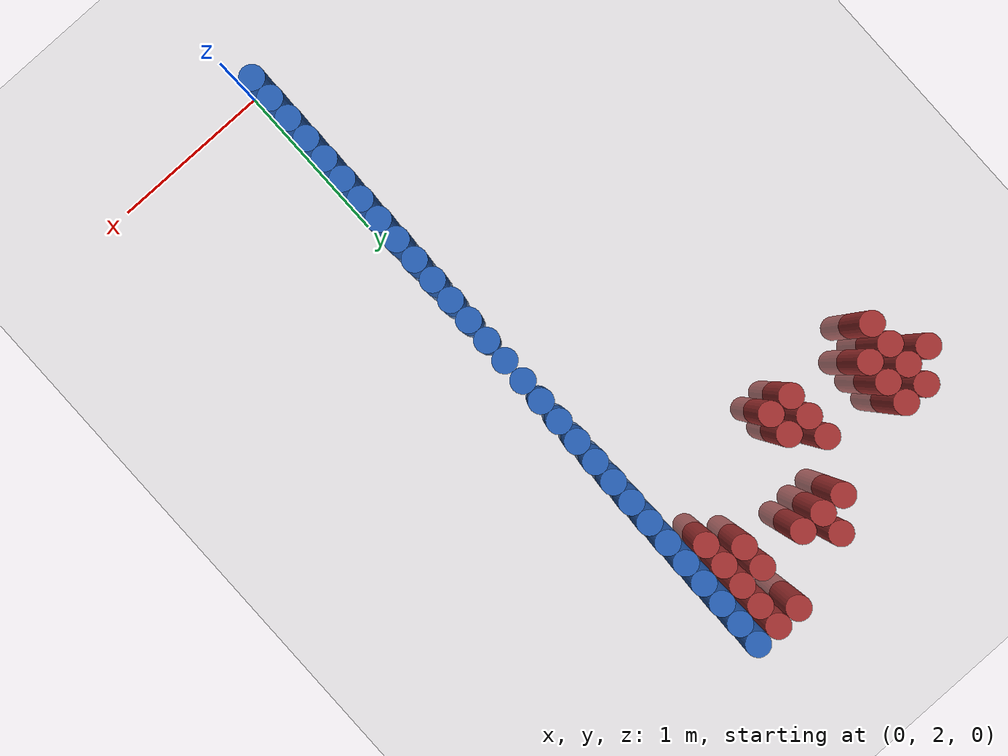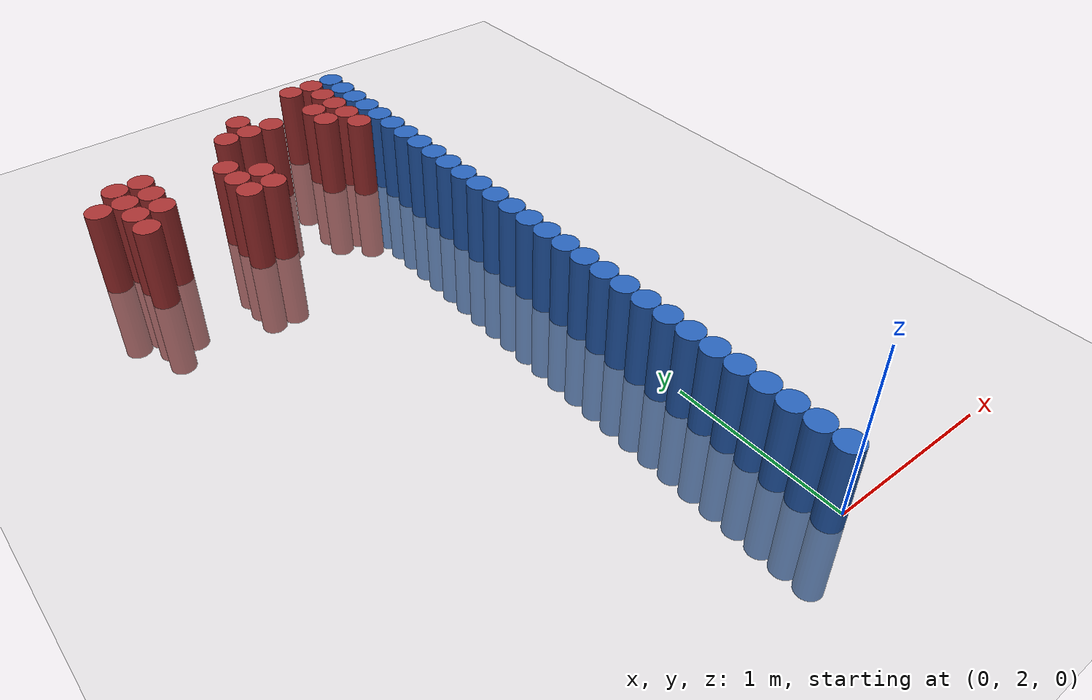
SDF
<sdf version="1.6">
 <world name="default">
  <model name="ground_plane">
   <static>1</static>
   <link name="link">
    <collision name="collision">
     <geometry><plane><normal>0 0 1</normal><size>100 100</size></plane></geometry>
     <surface><friction><ode><mu>100</mu><mu2>50</mu2></ode></friction></surface>
    </collision>
    <visual name="visual">
     <cast_shadows>0</cast_shadows>
     <geometry><plane><normal>0 0 1</normal><size>100 100</size></plane></geometry>
     <material>
      <script><uri>file://media/materials/scripts/gazebo.material</uri><name>Gazebo/Grey</name></script>
     </material>
    </visual>
   </link>
  </model>
  <model name="unit_cylinder_54">
   <static>1</static>
   <pose>-0.075000 2.025000 0.000000 0.000000 0.000000 0.000000</pose>
   <link name="link">
    <inertial>
     <mass>1</mass>
     <inertia><ixx>0.145833</ixx><ixy>0</ixy><ixz>0</ixz><iyy>0.145833</iyy><iyz>0</iyz><izz>0.125</izz></inertia>
    </inertial>
    <collision name="collision">
     <geometry><cylinder><radius>0.075000</radius><length>1</length></cylinder></geometry>
    </collision>
    <visual name="visual">
     <geometry><cylinder><radius>0.075000</radius><length>1</length></cylinder></geometry>
     <material>
      <ambient>0.152000 0.379000 0.720000 1</ambient>
      <diffuse>0.152000 0.379000 0.720000 1</diffuse>
     </material>
     <material>
      <script><name>Gazebo/Grey</name><uri>file://media/materials/scripts/gazebo.material</uri></script>
     </material>
    </visual>
   </link>
  </model>
  <model name="unit_cylinder_56">
   <static>1</static>
   <pose>-0.075000 2.175000 0.000000 0.000000 0.000000 0.000000</pose>
   <link name="link">
    <inertial>
     <mass>1</mass>
     <inertia><ixx>0.145833</ixx><ixy>0</ixy><ixz>0</ixz><iyy>0.145833</iyy><iyz>0</iyz><izz>0.125</izz></inertia>
    </inertial>
    <collision name="collision">
     <geometry><cylinder><radius>0.075000</radius><length>1</length></cylinder></geometry>
    </collision>
    <visual name="visual">
     <geometry><cylinder><radius>0.075000</radius><length>1</length></cylinder></geometry>
     <material>
      <ambient>0.152000 0.379000 0.720000 1</ambient>
      <diffuse>0.152000 0.379000 0.720000 1</diffuse>
     </material>
     <material>
      <script><name>Gazebo/Grey</name><uri>file://media/materials/scripts/gazebo.material</uri></script>
     </material>
    </visual>
   </link>
  </model>
  <model name="unit_cylinder_58">
   <static>1</static>
   <pose>-0.075000 2.325000 0.000000 0.000000 0.000000 0.000000</pose>
   <link name="link">
    <inertial>
     <mass>1</mass>
     <inertia><ixx>0.145833</ixx><ixy>0</ixy><ixz>0</ixz><iyy>0.145833</iyy><iyz>0</iyz><izz>0.125</izz></inertia>
    </inertial>
    <collision name="collision">
     <geometry><cylinder><radius>0.075000</radius><length>1</length></cylinder></geometry>
    </collision>
    <visual name="visual">
     <geometry><cylinder><radius>0.075000</radius><length>1</length></cylinder></geometry>
     <material>
      <ambient>0.152000 0.379000 0.720000 1</ambient>
      <diffuse>0.152000 0.379000 0.720000 1</diffuse>
     </material>
     <material>
      <script><name>Gazebo/Grey</name><uri>file://media/materials/scripts/gazebo.material</uri></script>
     </material>
    </visual>
   </link>
  </model>
  <model name="unit_cylinder_60">
   <static>1</static>
   <pose>-0.075000 2.475000 0.000000 0.000000 0.000000 0.000000</pose>
   <link name="link">
    <inertial>
     <mass>1</mass>
     <inertia><ixx>0.145833</ixx><ixy>0</ixy><ixz>0</ixz><iyy>0.145833</iyy><iyz>0</iyz><izz>0.125</izz></inertia>
    </inertial>
    <collision name="collision">
     <geometry><cylinder><radius>0.075000</radius><length>1</length></cylinder></geometry>
    </collision>
    <visual name="visual">
     <geometry><cylinder><radius>0.075000</radius><length>1</length></cylinder></geometry>
     <material>
      <ambient>0.152000 0.379000 0.720000 1</ambient>
      <diffuse>0.152000 0.379000 0.720000 1</diffuse>
     </material>
     <material>
      <script><name>Gazebo/Grey</name><uri>file://media/materials/scripts/gazebo.material</uri></script>
     </material>
    </visual>
   </link>
  </model>
  <model name="unit_cylinder_62">
   <static>1</static>
   <pose>-0.075000 2.625000 0.000000 0.000000 0.000000 0.000000</pose>
   <link name="link">
    <inertial>
     <mass>1</mass>
     <inertia><ixx>0.145833</ixx><ixy>0</ixy><ixz>0</ixz><iyy>0.145833</iyy><iyz>0</iyz><izz>0.125</izz></inertia>
    </inertial>
    <collision name="collision">
     <geometry><cylinder><radius>0.075000</radius><length>1</length></cylinder></geometry>
    </collision>
    <visual name="visual">
     <geometry><cylinder><radius>0.075000</radius><length>1</length></cylinder></geometry>
     <material>
      <ambient>0.152000 0.379000 0.720000 1</ambient>
      <diffuse>0.152000 0.379000 0.720000 1</diffuse>
     </material>
     <material>
      <script><name>Gazebo/Grey</name><uri>file://media/materials/scripts/gazebo.material</uri></script>
     </material>
    </visual>
   </link>
  </model>
  <model name="unit_cylinder_64">
   <static>1</static>
   <pose>-0.075000 2.775000 0.000000 0.000000 0.000000 0.000000</pose>
   <link name="link">
    <inertial>
     <mass>1</mass>
     <inertia><ixx>0.145833</ixx><ixy>0</ixy><ixz>0</ixz><iyy>0.145833</iyy><iyz>0</iyz><izz>0.125</izz></inertia>
    </inertial>
    <collision name="collision">
     <geometry><cylinder><radius>0.075000</radius><length>1</length></cylinder></geometry>
    </collision>
    <visual name="visual">
     <geometry><cylinder><radius>0.075000</radius><length>1</length></cylinder></geometry>
     <material>
      <ambient>0.152000 0.379000 0.720000 1</ambient>
      <diffuse>0.152000 0.379000 0.720000 1</diffuse>
     </material>
     <material>
      <script><name>Gazebo/Grey</name><uri>file://media/materials/scripts/gazebo.material</uri></script>
     </material>
    </visual>
   </link>
  </model>
  <model name="unit_cylinder_66">
   <static>1</static>
   <pose>-0.075000 2.925000 0.000000 0.000000 0.000000 0.000000</pose>
   <link name="link">
    <inertial>
     <mass>1</mass>
     <inertia><ixx>0.145833</ixx><ixy>0</ixy><ixz>0</ixz><iyy>0.145833</iyy><iyz>0</iyz><izz>0.125</izz></inertia>
    </inertial>
    <collision name="collision">
     <geometry><cylinder><radius>0.075000</radius><length>1</length></cylinder></geometry>
    </collision>
    <visual name="visual">
     <geometry><cylinder><radius>0.075000</radius><length>1</length></cylinder></geometry>
     <material>
      <ambient>0.152000 0.379000 0.720000 1</ambient>
      <diffuse>0.152000 0.379000 0.720000 1</diffuse>
     </material>
     <material>
      <script><name>Gazebo/Grey</name><uri>file://media/materials/scripts/gazebo.material</uri></script>
     </material>
    </visual>
   </link>
  </model>
  <model name="unit_cylinder_68">
   <static>1</static>
   <pose>-0.075000 3.075000 0.000000 0.000000 0.000000 0.000000</pose>
   <link name="link">
    <inertial>
     <mass>1</mass>
     <inertia><ixx>0.145833</ixx><ixy>0</ixy><ixz>0</ixz><iyy>0.145833</iyy><iyz>0</iyz><izz>0.125</izz></inertia>
    </inertial>
    <collision name="collision">
     <geometry><cylinder><radius>0.075000</radius><length>1</length></cylinder></geometry>
    </collision>
    <visual name="visual">
     <geometry><cylinder><radius>0.075000</radius><length>1</length></cylinder></geometry>
     <material>
      <ambient>0.152000 0.379000 0.720000 1</ambient>
      <diffuse>0.152000 0.379000 0.720000 1</diffuse>
     </material>
     <material>
      <script><name>Gazebo/Grey</name><uri>file://media/materials/scripts/gazebo.material</uri></script>
     </material>
    </visual>
   </link>
  </model>
  <model name="unit_cylinder_70">
   <static>1</static>
   <pose>-0.075000 3.225000 0.000000 0.000000 0.000000 0.000000</pose>
   <link name="link">
    <inertial>
     <mass>1</mass>
     <inertia><ixx>0.145833</ixx><ixy>0</ixy><ixz>0</ixz><iyy>0.145833</iyy><iyz>0</iyz><izz>0.125</izz></inertia>
    </inertial>
    <collision name="collision">
     <geometry><cylinder><radius>0.075000</radius><length>1</length></cylinder></geometry>
    </collision>
    <visual name="visual">
     <geometry><cylinder><radius>0.075000</radius><length>1</length></cylinder></geometry>
     <material>
      <ambient>0.152000 0.379000 0.720000 1</ambient>
      <diffuse>0.152000 0.379000 0.720000 1</diffuse>
     </material>
     <material>
      <script><name>Gazebo/Grey</name><uri>file://media/materials/scripts/gazebo.material</uri></script>
     </material>
    </visual>
   </link>
  </model>
  <model name="unit_cylinder_72">
   <static>1</static>
   <pose>-0.075000 3.375000 0.000000 0.000000 0.000000 0.000000</pose>
   <link name="link">
    <inertial>
     <mass>1</mass>
     <inertia><ixx>0.145833</ixx><ixy>0</ixy><ixz>0</ixz><iyy>0.145833</iyy><iyz>0</iyz><izz>0.125</izz></inertia>
    </inertial>
    <collision name="collision">
     <geometry><cylinder><radius>0.075000</radius><length>1</length></cylinder></geometry>
    </collision>
    <visual name="visual">
     <geometry><cylinder><radius>0.075000</radius><length>1</length></cylinder></geometry>
     <material>
      <ambient>0.152000 0.379000 0.720000 1</ambient>
      <diffuse>0.152000 0.379000 0.720000 1</diffuse>
     </material>
     <material>
      <script><name>Gazebo/Grey</name><uri>file://media/materials/scripts/gazebo.material</uri></script>
     </material>
    </visual>
   </link>
  </model>
  <model name="unit_cylinder_74">
   <static>1</static>
   <pose>-0.075000 3.525000 0.000000 0.000000 0.000000 0.000000</pose>
   <link name="link">
    <inertial>
     <mass>1</mass>
     <inertia><ixx>0.145833</ixx><ixy>0</ixy><ixz>0</ixz><iyy>0.145833</iyy><iyz>0</iyz><izz>0.125</izz></inertia>
    </inertial>
    <collision name="collision">
     <geometry><cylinder><radius>0.075000</radius><length>1</length></cylinder></geometry>
    </collision>
    <visual name="visual">
     <geometry><cylinder><radius>0.075000</radius><length>1</length></cylinder></geometry>
     <material>
      <ambient>0.152000 0.379000 0.720000 1</ambient>
      <diffuse>0.152000 0.379000 0.720000 1</diffuse>
     </material>
     <material>
      <script><name>Gazebo/Grey</name><uri>file://media/materials/scripts/gazebo.material</uri></script>
     </material>
    </visual>
   </link>
  </model>
  <model name="unit_cylinder_76">
   <static>1</static>
   <pose>-0.075000 3.675000 0.000000 0.000000 0.000000 0.000000</pose>
   <link name="link">
    <inertial>
     <mass>1</mass>
     <inertia><ixx>0.145833</ixx><ixy>0</ixy><ixz>0</ixz><iyy>0.145833</iyy><iyz>0</iyz><izz>0.125</izz></inertia>
    </inertial>
    <collision name="collision">
     <geometry><cylinder><radius>0.075000</radius><length>1</length></cylinder></geometry>
    </collision>
    <visual name="visual">
     <geometry><cylinder><radius>0.075000</radius><length>1</length></cylinder></geometry>
     <material>
      <ambient>0.152000 0.379000 0.720000 1</ambient>
      <diffuse>0.152000 0.379000 0.720000 1</diffuse>
     </material>
     <material>
      <script><name>Gazebo/Grey</name><uri>file://media/materials/scripts/gazebo.material</uri></script>
     </material>
    </visual>
   </link>
  </model>
  <model name="unit_cylinder_78">
   <static>1</static>
   <pose>-0.075000 3.825000 0.000000 0.000000 0.000000 0.000000</pose>
   <link name="link">
    <inertial>
     <mass>1</mass>
     <inertia><ixx>0.145833</ixx><ixy>0</ixy><ixz>0</ixz><iyy>0.145833</iyy><iyz>0</iyz><izz>0.125</izz></inertia>
    </inertial>
    <collision name="collision">
     <geometry><cylinder><radius>0.075000</radius><length>1</length></cylinder></geometry>
    </collision>
    <visual name="visual">
     <geometry><cylinder><radius>0.075000</radius><length>1</length></cylinder></geometry>
     <material>
      <ambient>0.152000 0.379000 0.720000 1</ambient>
      <diffuse>0.152000 0.379000 0.720000 1</diffuse>
     </material>
     <material>
      <script><name>Gazebo/Grey</name><uri>file://media/materials/scripts/gazebo.material</uri></script>
     </material>
    </visual>
   </link>
  </model>
  <model name="unit_cylinder_80">
   <static>1</static>
   <pose>-0.075000 3.975000 0.000000 0.000000 0.000000 0.000000</pose>
   <link name="link">
    <inertial>
     <mass>1</mass>
     <inertia><ixx>0.145833</ixx><ixy>0</ixy><ixz>0</ixz><iyy>0.145833</iyy><iyz>0</iyz><izz>0.125</izz></inertia>
    </inertial>
    <collision name="collision">
     <geometry><cylinder><radius>0.075000</radius><length>1</length></cylinder></geometry>
    </collision>
    <visual name="visual">
     <geometry><cylinder><radius>0.075000</radius><length>1</length></cylinder></geometry>
     <material>
      <ambient>0.152000 0.379000 0.720000 1</ambient>
      <diffuse>0.152000 0.379000 0.720000 1</diffuse>
     </material>
     <material>
      <script><name>Gazebo/Grey</name><uri>file://media/materials/scripts/gazebo.material</uri></script>
     </material>
    </visual>
   </link>
  </model>
  <model name="unit_cylinder_82">
   <static>1</static>
   <pose>-0.075000 4.125000 0.000000 0.000000 0.000000 0.000000</pose>
   <link name="link">
    <inertial>
     <mass>1</mass>
     <inertia><ixx>0.145833</ixx><ixy>0</ixy><ixz>0</ixz><iyy>0.145833</iyy><iyz>0</iyz><izz>0.125</izz></inertia>
    </inertial>
    <collision name="collision">
     <geometry><cylinder><radius>0.075000</radius><length>1</length></cylinder></geometry>
    </collision>
    <visual name="visual">
     <geometry><cylinder><radius>0.075000</radius><length>1</length></cylinder></geometry>
     <material>
      <ambient>0.152000 0.379000 0.720000 1</ambient>
      <diffuse>0.152000 0.379000 0.720000 1</diffuse>
     </material>
     <material>
      <script><name>Gazebo/Grey</name><uri>file://media/materials/scripts/gazebo.material</uri></script>
     </material>
    </visual>
   </link>
  </model>
  <model name="unit_cylinder_84">
   <static>1</static>
   <pose>-0.075000 4.275000 0.000000 0.000000 0.000000 0.000000</pose>
   <link name="link">
    <inertial>
     <mass>1</mass>
     <inertia><ixx>0.145833</ixx><ixy>0</ixy><ixz>0</ixz><iyy>0.145833</iyy><iyz>0</iyz><izz>0.125</izz></inertia>
    </inertial>
    <collision name="collision">
     <geometry><cylinder><radius>0.075000</radius><length>1</length></cylinder></geometry>
    </collision>
    <visual name="visual">
     <geometry><cylinder><radius>0.075000</radius><length>1</length></cylinder></geometry>
     <material>
      <ambient>0.152000 0.379000 0.720000 1</ambient>
      <diffuse>0.152000 0.379000 0.720000 1</diffuse>
     </material>
     <material>
      <script><name>Gazebo/Grey</name><uri>file://media/materials/scripts/gazebo.material</uri></script>
     </material>
    </visual>
   </link>
  </model>
  <model name="unit_cylinder_86">
   <static>1</static>
   <pose>-0.075000 4.425000 0.000000 0.000000 0.000000 0.000000</pose>
   <link name="link">
    <inertial>
     <mass>1</mass>
     <inertia><ixx>0.145833</ixx><ixy>0</ixy><ixz>0</ixz><iyy>0.145833</iyy><iyz>0</iyz><izz>0.125</izz></inertia>
    </inertial>
    <collision name="collision">
     <geometry><cylinder><radius>0.075000</radius><length>1</length></cylinder></geometry>
    </collision>
    <visual name="visual">
     <geometry><cylinder><radius>0.075000</radius><length>1</length></cylinder></geometry>
     <material>
      <ambient>0.152000 0.379000 0.720000 1</ambient>
      <diffuse>0.152000 0.379000 0.720000 1</diffuse>
     </material>
     <material>
      <script><name>Gazebo/Grey</name><uri>file://media/materials/scripts/gazebo.material</uri></script>
     </material>
    </visual>
   </link>
  </model>
  <model name="unit_cylinder_88">
   <static>1</static>
   <pose>-0.075000 4.575000 0.000000 0.000000 0.000000 0.000000</pose>
   <link name="link">
    <inertial>
     <mass>1</mass>
     <inertia><ixx>0.145833</ixx><ixy>0</ixy><ixz>0</ixz><iyy>0.145833</iyy><iyz>0</iyz><izz>0.125</izz></inertia>
    </inertial>
    <collision name="collision">
     <geometry><cylinder><radius>0.075000</radius><length>1</length></cylinder></geometry>
    </collision>
    <visual name="visual">
     <geometry><cylinder><radius>0.075000</radius><length>1</length></cylinder></geometry>
     <material>
      <ambient>0.152000 0.379000 0.720000 1</ambient>
      <diffuse>0.152000 0.379000 0.720000 1</diffuse>
     </material>
     <material>
      <script><name>Gazebo/Grey</name><uri>file://media/materials/scripts/gazebo.material</uri></script>
     </material>
    </visual>
   </link>
  </model>
  <model name="unit_cylinder_90">
   <static>1</static>
   <pose>-0.075000 4.725000 0.000000 0.000000 0.000000 0.000000</pose>
   <link name="link">
    <inertial>
     <mass>1</mass>
     <inertia><ixx>0.145833</ixx><ixy>0</ixy><ixz>0</ixz><iyy>0.145833</iyy><iyz>0</iyz><izz>0.125</izz></inertia>
    </inertial>
    <collision name="collision">
     <geometry><cylinder><radius>0.075000</radius><length>1</length></cylinder></geometry>
    </collision>
    <visual name="visual">
     <geometry><cylinder><radius>0.075000</radius><length>1</length></cylinder></geometry>
     <material>
      <ambient>0.152000 0.379000 0.720000 1</ambient>
      <diffuse>0.152000 0.379000 0.720000 1</diffuse>
     </material>
     <material>
      <script><name>Gazebo/Grey</name><uri>file://media/materials/scripts/gazebo.material</uri></script>
     </material>
    </visual>
   </link>
  </model>
  <model name="unit_cylinder_92">
   <static>1</static>
   <pose>-0.075000 4.875000 0.000000 0.000000 0.000000 0.000000</pose>
   <link name="link">
    <inertial>
     <mass>1</mass>
     <inertia><ixx>0.145833</ixx><ixy>0</ixy><ixz>0</ixz><iyy>0.145833</iyy><iyz>0</iyz><izz>0.125</izz></inertia>
    </inertial>
    <collision name="collision">
     <geometry><cylinder><radius>0.075000</radius><length>1</length></cylinder></geometry>
    </collision>
    <visual name="visual">
     <geometry><cylinder><radius>0.075000</radius><length>1</length></cylinder></geometry>
     <material>
      <ambient>0.152000 0.379000 0.720000 1</ambient>
      <diffuse>0.152000 0.379000 0.720000 1</diffuse>
     </material>
     <material>
      <script><name>Gazebo/Grey</name><uri>file://media/materials/scripts/gazebo.material</uri></script>
     </material>
    </visual>
   </link>
  </model>
  <model name="unit_cylinder_94">
   <static>1</static>
   <pose>-0.075000 5.025000 0.000000 0.000000 0.000000 0.000000</pose>
   <link name="link">
    <inertial>
     <mass>1</mass>
     <inertia><ixx>0.145833</ixx><ixy>0</ixy><ixz>0</ixz><iyy>0.145833</iyy><iyz>0</iyz><izz>0.125</izz></inertia>
    </inertial>
    <collision name="collision">
     <geometry><cylinder><radius>0.075000</radius><length>1</length></cylinder></geometry>
    </collision>
    <visual name="visual">
     <geometry><cylinder><radius>0.075000</radius><length>1</length></cylinder></geometry>
     <material>
      <ambient>0.152000 0.379000 0.720000 1</ambient>
      <diffuse>0.152000 0.379000 0.720000 1</diffuse>
     </material>
     <material>
      <script><name>Gazebo/Grey</name><uri>file://media/materials/scripts/gazebo.material</uri></script>
     </material>
    </visual>
   </link>
  </model>
  <model name="unit_cylinder_193">
   <static>1</static>
   <pose>-1.875000 5.625000 0.000000 0.000000 0.000000 0.000000</pose>
   <link name="link">
    <inertial>
     <mass>1</mass>
     <inertia><ixx>0.145833</ixx><ixy>0</ixy><ixz>0</ixz><iyy>0.145833</iyy><iyz>0</iyz><izz>0.125</izz></inertia>
    </inertial>
    <collision name="collision">
     <geometry><cylinder><radius>0.075000</radius><length>1</length></cylinder></geometry>
    </collision>
    <visual name="visual">
     <geometry><cylinder><radius>0.075000</radius><length>1</length></cylinder></geometry>
     <material>
      <ambient>0.648000 0.192000 0.192000 1</ambient>
      <diffuse>0.648000 0.192000 0.192000 1</diffuse>
     </material>
     <material>
      <script><name>Gazebo/Grey</name><uri>file://media/materials/scripts/gazebo.material</uri></script>
     </material>
    </visual>
   </link>
  </model>
  <model name="unit_cylinder_200">
   <static>1</static>
   <pose>-1.725000 5.325000 0.000000 0.000000 0.000000 0.000000</pose>
   <link name="link">
    <inertial>
     <mass>1</mass>
     <inertia><ixx>0.145833</ixx><ixy>0</ixy><ixz>0</ixz><iyy>0.145833</iyy><iyz>0</iyz><izz>0.125</izz></inertia>
    </inertial>
    <collision name="collision">
     <geometry><cylinder><radius>0.075000</radius><length>1</length></cylinder></geometry>
    </collision>
    <visual name="visual">
     <geometry><cylinder><radius>0.075000</radius><length>1</length></cylinder></geometry>
     <material>
      <ambient>0.648000 0.192000 0.192000 1</ambient>
      <diffuse>0.648000 0.192000 0.192000 1</diffuse>
     </material>
     <material>
      <script><name>Gazebo/Grey</name><uri>file://media/materials/scripts/gazebo.material</uri></script>
     </material>
    </visual>
   </link>
  </model>
  <model name="unit_cylinder_201">
   <static>1</static>
   <pose>-1.725000 5.475000 0.000000 0.000000 0.000000 0.000000</pose>
   <link name="link">
    <inertial>
     <mass>1</mass>
     <inertia><ixx>0.145833</ixx><ixy>0</ixy><ixz>0</ixz><iyy>0.145833</iyy><iyz>0</iyz><izz>0.125</izz></inertia>
    </inertial>
    <collision name="collision">
     <geometry><cylinder><radius>0.075000</radius><length>1</length></cylinder></geometry>
    </collision>
    <visual name="visual">
     <geometry><cylinder><radius>0.075000</radius><length>1</length></cylinder></geometry>
     <material>
      <ambient>0.648000 0.192000 0.192000 1</ambient>
      <diffuse>0.648000 0.192000 0.192000 1</diffuse>
     </material>
     <material>
      <script><name>Gazebo/Grey</name><uri>file://media/materials/scripts/gazebo.material</uri></script>
     </material>
    </visual>
   </link>
  </model>
  <model name="unit_cylinder_202">
   <static>1</static>
   <pose>-1.725000 5.625000 0.000000 0.000000 0.000000 0.000000</pose>
   <link name="link">
    <inertial>
     <mass>1</mass>
     <inertia><ixx>0.145833</ixx><ixy>0</ixy><ixz>0</ixz><iyy>0.145833</iyy><iyz>0</iyz><izz>0.125</izz></inertia>
    </inertial>
    <collision name="collision">
     <geometry><cylinder><radius>0.075000</radius><length>1</length></cylinder></geometry>
    </collision>
    <visual name="visual">
     <geometry><cylinder><radius>0.075000</radius><length>1</length></cylinder></geometry>
     <material>
      <ambient>0.648000 0.192000 0.192000 1</ambient>
      <diffuse>0.648000 0.192000 0.192000 1</diffuse>
     </material>
     <material>
      <script><name>Gazebo/Grey</name><uri>file://media/materials/scripts/gazebo.material</uri></script>
     </material>
    </visual>
   </link>
  </model>
  <model name="unit_cylinder_203">
   <static>1</static>
   <pose>-1.725000 5.775000 0.000000 0.000000 0.000000 0.000000</pose>
   <link name="link">
    <inertial>
     <mass>1</mass>
     <inertia><ixx>0.145833</ixx><ixy>0</ixy><ixz>0</ixz><iyy>0.145833</iyy><iyz>0</iyz><izz>0.125</izz></inertia>
    </inertial>
    <collision name="collision">
     <geometry><cylinder><radius>0.075000</radius><length>1</length></cylinder></geometry>
    </collision>
    <visual name="visual">
     <geometry><cylinder><radius>0.075000</radius><length>1</length></cylinder></geometry>
     <material>
      <ambient>0.648000 0.192000 0.192000 1</ambient>
      <diffuse>0.648000 0.192000 0.192000 1</diffuse>
     </material>
     <material>
      <script><name>Gazebo/Grey</name><uri>file://media/materials/scripts/gazebo.material</uri></script>
     </material>
    </visual>
   </link>
  </model>
  <model name="unit_cylinder_212">
   <static>1</static>
   <pose>-1.575000 5.475000 0.000000 0.000000 0.000000 0.000000</pose>
   <link name="link">
    <inertial>
     <mass>1</mass>
     <inertia><ixx>0.145833</ixx><ixy>0</ixy><ixz>0</ixz><iyy>0.145833</iyy><iyz>0</iyz><izz>0.125</izz></inertia>
    </inertial>
    <collision name="collision">
     <geometry><cylinder><radius>0.075000</radius><length>1</length></cylinder></geometry>
    </collision>
    <visual name="visual">
     <geometry><cylinder><radius>0.075000</radius><length>1</length></cylinder></geometry>
     <material>
      <ambient>0.648000 0.192000 0.192000 1</ambient>
      <diffuse>0.648000 0.192000 0.192000 1</diffuse>
     </material>
     <material>
      <script><name>Gazebo/Grey</name><uri>file://media/materials/scripts/gazebo.material</uri></script>
     </material>
    </visual>
   </link>
  </model>
  <model name="unit_cylinder_213">
   <static>1</static>
   <pose>-1.575000 5.625000 0.000000 0.000000 0.000000 0.000000</pose>
   <link name="link">
    <inertial>
     <mass>1</mass>
     <inertia><ixx>0.145833</ixx><ixy>0</ixy><ixz>0</ixz><iyy>0.145833</iyy><iyz>0</iyz><izz>0.125</izz></inertia>
    </inertial>
    <collision name="collision">
     <geometry><cylinder><radius>0.075000</radius><length>1</length></cylinder></geometry>
    </collision>
    <visual name="visual">
     <geometry><cylinder><radius>0.075000</radius><length>1</length></cylinder></geometry>
     <material>
      <ambient>0.648000 0.192000 0.192000 1</ambient>
      <diffuse>0.648000 0.192000 0.192000 1</diffuse>
     </material>
     <material>
      <script><name>Gazebo/Grey</name><uri>file://media/materials/scripts/gazebo.material</uri></script>
     </material>
    </visual>
   </link>
  </model>
  <model name="unit_cylinder_214">
   <static>1</static>
   <pose>-1.575000 5.775000 0.000000 0.000000 0.000000 0.000000</pose>
   <link name="link">
    <inertial>
     <mass>1</mass>
     <inertia><ixx>0.145833</ixx><ixy>0</ixy><ixz>0</ixz><iyy>0.145833</iyy><iyz>0</iyz><izz>0.125</izz></inertia>
    </inertial>
    <collision name="collision">
     <geometry><cylinder><radius>0.075000</radius><length>1</length></cylinder></geometry>
    </collision>
    <visual name="visual">
     <geometry><cylinder><radius>0.075000</radius><length>1</length></cylinder></geometry>
     <material>
      <ambient>0.648000 0.192000 0.192000 1</ambient>
      <diffuse>0.648000 0.192000 0.192000 1</diffuse>
     </material>
     <material>
      <script><name>Gazebo/Grey</name><uri>file://media/materials/scripts/gazebo.material</uri></script>
     </material>
    </visual>
   </link>
  </model>
  <model name="unit_cylinder_233">
   <static>1</static>
   <pose>-1.125000 5.325000 0.000000 0.000000 0.000000 0.000000</pose>
   <link name="link">
    <inertial>
     <mass>1</mass>
     <inertia><ixx>0.145833</ixx><ixy>0</ixy><ixz>0</ixz><iyy>0.145833</iyy><iyz>0</iyz><izz>0.125</izz></inertia>
    </inertial>
    <collision name="collision">
     <geometry><cylinder><radius>0.075000</radius><length>1</length></cylinder></geometry>
    </collision>
    <visual name="visual">
     <geometry><cylinder><radius>0.075000</radius><length>1</length></cylinder></geometry>
     <material>
      <ambient>0.648000 0.192000 0.192000 1</ambient>
      <diffuse>0.648000 0.192000 0.192000 1</diffuse>
     </material>
     <material>
      <script><name>Gazebo/Grey</name><uri>file://media/materials/scripts/gazebo.material</uri></script>
     </material>
    </visual>
   </link>
  </model>
  <model name="unit_cylinder_234">
   <static>1</static>
   <pose>-1.125000 5.475000 0.000000 0.000000 0.000000 0.000000</pose>
   <link name="link">
    <inertial>
     <mass>1</mass>
     <inertia><ixx>0.145833</ixx><ixy>0</ixy><ixz>0</ixz><iyy>0.145833</iyy><iyz>0</iyz><izz>0.125</izz></inertia>
    </inertial>
    <collision name="collision">
     <geometry><cylinder><radius>0.075000</radius><length>1</length></cylinder></geometry>
    </collision>
    <visual name="visual">
     <geometry><cylinder><radius>0.075000</radius><length>1</length></cylinder></geometry>
     <material>
      <ambient>0.648000 0.192000 0.192000 1</ambient>
      <diffuse>0.648000 0.192000 0.192000 1</diffuse>
     </material>
     <material>
      <script><name>Gazebo/Grey</name><uri>file://media/materials/scripts/gazebo.material</uri></script>
     </material>
    </visual>
   </link>
  </model>
  <model name="unit_cylinder_235">
   <static>1</static>
   <pose>-1.125000 5.625000 0.000000 0.000000 0.000000 0.000000</pose>
   <link name="link">
    <inertial>
     <mass>1</mass>
     <inertia><ixx>0.145833</ixx><ixy>0</ixy><ixz>0</ixz><iyy>0.145833</iyy><iyz>0</iyz><izz>0.125</izz></inertia>
    </inertial>
    <collision name="collision">
     <geometry><cylinder><radius>0.075000</radius><length>1</length></cylinder></geometry>
    </collision>
    <visual name="visual">
     <geometry><cylinder><radius>0.075000</radius><length>1</length></cylinder></geometry>
     <material>
      <ambient>0.648000 0.192000 0.192000 1</ambient>
      <diffuse>0.648000 0.192000 0.192000 1</diffuse>
     </material>
     <material>
      <script><name>Gazebo/Grey</name><uri>file://media/materials/scripts/gazebo.material</uri></script>
     </material>
    </visual>
   </link>
  </model>
  <model name="unit_cylinder_242">
   <static>1</static>
   <pose>-0.975000 5.325000 0.000000 0.000000 0.000000 0.000000</pose>
   <link name="link">
    <inertial>
     <mass>1</mass>
     <inertia><ixx>0.145833</ixx><ixy>0</ixy><ixz>0</ixz><iyy>0.145833</iyy><iyz>0</iyz><izz>0.125</izz></inertia>
    </inertial>
    <collision name="collision">
     <geometry><cylinder><radius>0.075000</radius><length>1</length></cylinder></geometry>
    </collision>
    <visual name="visual">
     <geometry><cylinder><radius>0.075000</radius><length>1</length></cylinder></geometry>
     <material>
      <ambient>0.648000 0.192000 0.192000 1</ambient>
      <diffuse>0.648000 0.192000 0.192000 1</diffuse>
     </material>
     <material>
      <script><name>Gazebo/Grey</name><uri>file://media/materials/scripts/gazebo.material</uri></script>
     </material>
    </visual>
   </link>
  </model>
  <model name="unit_cylinder_243">
   <static>1</static>
   <pose>-0.975000 5.475000 0.000000 0.000000 0.000000 0.000000</pose>
   <link name="link">
    <inertial>
     <mass>1</mass>
     <inertia><ixx>0.145833</ixx><ixy>0</ixy><ixz>0</ixz><iyy>0.145833</iyy><iyz>0</iyz><izz>0.125</izz></inertia>
    </inertial>
    <collision name="collision">
     <geometry><cylinder><radius>0.075000</radius><length>1</length></cylinder></geometry>
    </collision>
    <visual name="visual">
     <geometry><cylinder><radius>0.075000</radius><length>1</length></cylinder></geometry>
     <material>
      <ambient>0.648000 0.192000 0.192000 1</ambient>
      <diffuse>0.648000 0.192000 0.192000 1</diffuse>
     </material>
     <material>
      <script><name>Gazebo/Grey</name><uri>file://media/materials/scripts/gazebo.material</uri></script>
     </material>
    </visual>
   </link>
  </model>
  <model name="unit_cylinder_244">
   <static>1</static>
   <pose>-0.975000 5.925000 0.000000 0.000000 0.000000 0.000000</pose>
   <link name="link">
    <inertial>
     <mass>1</mass>
     <inertia><ixx>0.145833</ixx><ixy>0</ixy><ixz>0</ixz><iyy>0.145833</iyy><iyz>0</iyz><izz>0.125</izz></inertia>
    </inertial>
    <collision name="collision">
     <geometry><cylinder><radius>0.075000</radius><length>1</length></cylinder></geometry>
    </collision>
    <visual name="visual">
     <geometry><cylinder><radius>0.075000</radius><length>1</length></cylinder></geometry>
     <material>
      <ambient>0.648000 0.192000 0.192000 1</ambient>
      <diffuse>0.648000 0.192000 0.192000 1</diffuse>
     </material>
     <material>
      <script><name>Gazebo/Grey</name><uri>file://media/materials/scripts/gazebo.material</uri></script>
     </material>
    </visual>
   </link>
  </model>
  <model name="unit_cylinder_253">
   <static>1</static>
   <pose>-0.825000 5.925000 0.000000 0.000000 0.000000 0.000000</pose>
   <link name="link">
    <inertial>
     <mass>1</mass>
     <inertia><ixx>0.145833</ixx><ixy>0</ixy><ixz>0</ixz><iyy>0.145833</iyy><iyz>0</iyz><izz>0.125</izz></inertia>
    </inertial>
    <collision name="collision">
     <geometry><cylinder><radius>0.075000</radius><length>1</length></cylinder></geometry>
    </collision>
    <visual name="visual">
     <geometry><cylinder><radius>0.075000</radius><length>1</length></cylinder></geometry>
     <material>
      <ambient>0.648000 0.192000 0.192000 1</ambient>
      <diffuse>0.648000 0.192000 0.192000 1</diffuse>
     </material>
     <material>
      <script><name>Gazebo/Grey</name><uri>file://media/materials/scripts/gazebo.material</uri></script>
     </material>
    </visual>
   </link>
  </model>
  <model name="unit_cylinder_254">
   <static>1</static>
   <pose>-0.825000 6.075000 0.000000 0.000000 0.000000 0.000000</pose>
   <link name="link">
    <inertial>
     <mass>1</mass>
     <inertia><ixx>0.145833</ixx><ixy>0</ixy><ixz>0</ixz><iyy>0.145833</iyy><iyz>0</iyz><izz>0.125</izz></inertia>
    </inertial>
    <collision name="collision">
     <geometry><cylinder><radius>0.075000</radius><length>1</length></cylinder></geometry>
    </collision>
    <visual name="visual">
     <geometry><cylinder><radius>0.075000</radius><length>1</length></cylinder></geometry>
     <material>
      <ambient>0.648000 0.192000 0.192000 1</ambient>
      <diffuse>0.648000 0.192000 0.192000 1</diffuse>
     </material>
     <material>
      <script><name>Gazebo/Grey</name><uri>file://media/materials/scripts/gazebo.material</uri></script>
     </material>
    </visual>
   </link>
  </model>
  <model name="unit_cylinder_260">
   <static>1</static>
   <pose>-0.675000 5.925000 0.000000 0.000000 0.000000 0.000000</pose>
   <link name="link">
    <inertial>
     <mass>1</mass>
     <inertia><ixx>0.145833</ixx><ixy>0</ixy><ixz>0</ixz><iyy>0.145833</iyy><iyz>0</iyz><izz>0.125</izz></inertia>
    </inertial>
    <collision name="collision">
     <geometry><cylinder><radius>0.075000</radius><length>1</length></cylinder></geometry>
    </collision>
    <visual name="visual">
     <geometry><cylinder><radius>0.075000</radius><length>1</length></cylinder></geometry>
     <material>
      <ambient>0.648000 0.192000 0.192000 1</ambient>
      <diffuse>0.648000 0.192000 0.192000 1</diffuse>
     </material>
     <material>
      <script><name>Gazebo/Grey</name><uri>file://media/materials/scripts/gazebo.material</uri></script>
     </material>
    </visual>
   </link>
  </model>
  <model name="unit_cylinder_269">
   <static>1</static>
   <pose>-0.375000 5.775000 0.000000 0.000000 0.000000 0.000000</pose>
   <link name="link">
    <inertial>
     <mass>1</mass>
     <inertia><ixx>0.145833</ixx><ixy>0</ixy><ixz>0</ixz><iyy>0.145833</iyy><iyz>0</iyz><izz>0.125</izz></inertia>
    </inertial>
    <collision name="collision">
     <geometry><cylinder><radius>0.075000</radius><length>1</length></cylinder></geometry>
    </collision>
    <visual name="visual">
     <geometry><cylinder><radius>0.075000</radius><length>1</length></cylinder></geometry>
     <material>
      <ambient>0.648000 0.192000 0.192000 1</ambient>
      <diffuse>0.648000 0.192000 0.192000 1</diffuse>
     </material>
     <material>
      <script><name>Gazebo/Grey</name><uri>file://media/materials/scripts/gazebo.material</uri></script>
     </material>
    </visual>
   </link>
  </model>
  <model name="unit_cylinder_270">
   <static>1</static>
   <pose>-0.375000 5.925000 0.000000 0.000000 0.000000 0.000000</pose>
   <link name="link">
    <inertial>
     <mass>1</mass>
     <inertia><ixx>0.145833</ixx><ixy>0</ixy><ixz>0</ixz><iyy>0.145833</iyy><iyz>0</iyz><izz>0.125</izz></inertia>
    </inertial>
    <collision name="collision">
     <geometry><cylinder><radius>0.075000</radius><length>1</length></cylinder></geometry>
    </collision>
    <visual name="visual">
     <geometry><cylinder><radius>0.075000</radius><length>1</length></cylinder></geometry>
     <material>
      <ambient>0.648000 0.192000 0.192000 1</ambient>
      <diffuse>0.648000 0.192000 0.192000 1</diffuse>
     </material>
     <material>
      <script><name>Gazebo/Grey</name><uri>file://media/materials/scripts/gazebo.material</uri></script>
     </material>
    </visual>
   </link>
  </model>
  <model name="unit_cylinder_271">
   <static>1</static>
   <pose>-0.375000 6.225000 0.000000 0.000000 0.000000 0.000000</pose>
   <link name="link">
    <inertial>
     <mass>1</mass>
     <inertia><ixx>0.145833</ixx><ixy>0</ixy><ixz>0</ixz><iyy>0.145833</iyy><iyz>0</iyz><izz>0.125</izz></inertia>
    </inertial>
    <collision name="collision">
     <geometry><cylinder><radius>0.075000</radius><length>1</length></cylinder></geometry>
    </collision>
    <visual name="visual">
     <geometry><cylinder><radius>0.075000</radius><length>1</length></cylinder></geometry>
     <material>
      <ambient>0.648000 0.192000 0.192000 1</ambient>
      <diffuse>0.648000 0.192000 0.192000 1</diffuse>
     </material>
     <material>
      <script><name>Gazebo/Grey</name><uri>file://media/materials/scripts/gazebo.material</uri></script>
     </material>
    </visual>
   </link>
  </model>
  <model name="unit_cylinder_277">
   <static>1</static>
   <pose>-0.225000 5.625000 0.000000 0.000000 0.000000 0.000000</pose>
   <link name="link">
    <inertial>
     <mass>1</mass>
     <inertia><ixx>0.145833</ixx><ixy>0</ixy><ixz>0</ixz><iyy>0.145833</iyy><iyz>0</iyz><izz>0.125</izz></inertia>
    </inertial>
    <collision name="collision">
     <geometry><cylinder><radius>0.075000</radius><length>1</length></cylinder></geometry>
    </collision>
    <visual name="visual">
     <geometry><cylinder><radius>0.075000</radius><length>1</length></cylinder></geometry>
     <material>
      <ambient>0.648000 0.192000 0.192000 1</ambient>
      <diffuse>0.648000 0.192000 0.192000 1</diffuse>
     </material>
     <material>
      <script><name>Gazebo/Grey</name><uri>file://media/materials/scripts/gazebo.material</uri></script>
     </material>
    </visual>
   </link>
  </model>
  <model name="unit_cylinder_278">
   <static>1</static>
   <pose>-0.225000 5.775000 0.000000 0.000000 0.000000 0.000000</pose>
   <link name="link">
    <inertial>
     <mass>1</mass>
     <inertia><ixx>0.145833</ixx><ixy>0</ixy><ixz>0</ixz><iyy>0.145833</iyy><iyz>0</iyz><izz>0.125</izz></inertia>
    </inertial>
    <collision name="collision">
     <geometry><cylinder><radius>0.075000</radius><length>1</length></cylinder></geometry>
    </collision>
    <visual name="visual">
     <geometry><cylinder><radius>0.075000</radius><length>1</length></cylinder></geometry>
     <material>
      <ambient>0.648000 0.192000 0.192000 1</ambient>
      <diffuse>0.648000 0.192000 0.192000 1</diffuse>
     </material>
     <material>
      <script><name>Gazebo/Grey</name><uri>file://media/materials/scripts/gazebo.material</uri></script>
     </material>
    </visual>
   </link>
  </model>
  <model name="unit_cylinder_279">
   <static>1</static>
   <pose>-0.225000 5.925000 0.000000 0.000000 0.000000 0.000000</pose>
   <link name="link">
    <inertial>
     <mass>1</mass>
     <inertia><ixx>0.145833</ixx><ixy>0</ixy><ixz>0</ixz><iyy>0.145833</iyy><iyz>0</iyz><izz>0.125</izz></inertia>
    </inertial>
    <collision name="collision">
     <geometry><cylinder><radius>0.075000</radius><length>1</length></cylinder></geometry>
    </collision>
    <visual name="visual">
     <geometry><cylinder><radius>0.075000</radius><length>1</length></cylinder></geometry>
     <material>
      <ambient>0.648000 0.192000 0.192000 1</ambient>
      <diffuse>0.648000 0.192000 0.192000 1</diffuse>
     </material>
     <material>
      <script><name>Gazebo/Grey</name><uri>file://media/materials/scripts/gazebo.material</uri></script>
     </material>
    </visual>
   </link>
  </model>
  <model name="unit_cylinder_280">
   <static>1</static>
   <pose>-0.225000 6.075000 0.000000 0.000000 0.000000 0.000000</pose>
   <link name="link">
    <inertial>
     <mass>1</mass>
     <inertia><ixx>0.145833</ixx><ixy>0</ixy><ixz>0</ixz><iyy>0.145833</iyy><iyz>0</iyz><izz>0.125</izz></inertia>
    </inertial>
    <collision name="collision">
     <geometry><cylinder><radius>0.075000</radius><length>1</length></cylinder></geometry>
    </collision>
    <visual name="visual">
     <geometry><cylinder><radius>0.075000</radius><length>1</length></cylinder></geometry>
     <material>
      <ambient>0.648000 0.192000 0.192000 1</ambient>
      <diffuse>0.648000 0.192000 0.192000 1</diffuse>
     </material>
     <material>
      <script><name>Gazebo/Grey</name><uri>file://media/materials/scripts/gazebo.material</uri></script>
     </material>
    </visual>
   </link>
  </model>
  <model name="unit_cylinder_281">
   <static>1</static>
   <pose>-0.225000 6.225000 0.000000 0.000000 0.000000 0.000000</pose>
   <link name="link">
    <inertial>
     <mass>1</mass>
     <inertia><ixx>0.145833</ixx><ixy>0</ixy><ixz>0</ixz><iyy>0.145833</iyy><iyz>0</iyz><izz>0.125</izz></inertia>
    </inertial>
    <collision name="collision">
     <geometry><cylinder><radius>0.075000</radius><length>1</length></cylinder></geometry>
    </collision>
    <visual name="visual">
     <geometry><cylinder><radius>0.075000</radius><length>1</length></cylinder></geometry>
     <material>
      <ambient>0.648000 0.192000 0.192000 1</ambient>
      <diffuse>0.648000 0.192000 0.192000 1</diffuse>
     </material>
     <material>
      <script><name>Gazebo/Grey</name><uri>file://media/materials/scripts/gazebo.material</uri></script>
     </material>
    </visual>
   </link>
  </model>
  <model name="unit_cylinder_295">
   <static>1</static>
   <pose>-0.075000 5.175000 0.000000 0.000000 0.000000 0.000000</pose>
   <link name="link">
    <inertial>
     <mass>1</mass>
     <inertia><ixx>0.145833</ixx><ixy>0</ixy><ixz>0</ixz><iyy>0.145833</iyy><iyz>0</iyz><izz>0.125</izz></inertia>
    </inertial>
    <collision name="collision">
     <geometry><cylinder><radius>0.075000</radius><length>1</length></cylinder></geometry>
    </collision>
    <visual name="visual">
     <geometry><cylinder><radius>0.075000</radius><length>1</length></cylinder></geometry>
     <material>
      <ambient>0.152000 0.379000 0.720000 1</ambient>
      <diffuse>0.152000 0.379000 0.720000 1</diffuse>
     </material>
     <material>
      <script><name>Gazebo/Grey</name><uri>file://media/materials/scripts/gazebo.material</uri></script>
     </material>
    </visual>
   </link>
  </model>
  <model name="unit_cylinder_296">
   <static>1</static>
   <pose>-0.075000 5.325000 0.000000 0.000000 0.000000 0.000000</pose>
   <link name="link">
    <inertial>
     <mass>1</mass>
     <inertia><ixx>0.145833</ixx><ixy>0</ixy><ixz>0</ixz><iyy>0.145833</iyy><iyz>0</iyz><izz>0.125</izz></inertia>
    </inertial>
    <collision name="collision">
     <geometry><cylinder><radius>0.075000</radius><length>1</length></cylinder></geometry>
    </collision>
    <visual name="visual">
     <geometry><cylinder><radius>0.075000</radius><length>1</length></cylinder></geometry>
     <material>
      <ambient>0.152000 0.379000 0.720000 1</ambient>
      <diffuse>0.152000 0.379000 0.720000 1</diffuse>
     </material>
     <material>
      <script><name>Gazebo/Grey</name><uri>file://media/materials/scripts/gazebo.material</uri></script>
     </material>
    </visual>
   </link>
  </model>
  <model name="unit_cylinder_297">
   <static>1</static>
   <pose>-0.075000 5.475000 0.000000 0.000000 0.000000 0.000000</pose>
   <link name="link">
    <inertial>
     <mass>1</mass>
     <inertia><ixx>0.145833</ixx><ixy>0</ixy><ixz>0</ixz><iyy>0.145833</iyy><iyz>0</iyz><izz>0.125</izz></inertia>
    </inertial>
    <collision name="collision">
     <geometry><cylinder><radius>0.075000</radius><length>1</length></cylinder></geometry>
    </collision>
    <visual name="visual">
     <geometry><cylinder><radius>0.075000</radius><length>1</length></cylinder></geometry>
     <material>
      <ambient>0.152000 0.379000 0.720000 1</ambient>
      <diffuse>0.152000 0.379000 0.720000 1</diffuse>
     </material>
     <material>
      <script><name>Gazebo/Grey</name><uri>file://media/materials/scripts/gazebo.material</uri></script>
     </material>
    </visual>
   </link>
  </model>
  <model name="unit_cylinder_298">
   <static>1</static>
   <pose>-0.075000 5.625000 0.000000 0.000000 0.000000 0.000000</pose>
   <link name="link">
    <inertial>
     <mass>1</mass>
     <inertia><ixx>0.145833</ixx><ixy>0</ixy><ixz>0</ixz><iyy>0.145833</iyy><iyz>0</iyz><izz>0.125</izz></inertia>
    </inertial>
    <collision name="collision">
     <geometry><cylinder><radius>0.075000</radius><length>1</length></cylinder></geometry>
    </collision>
    <visual name="visual">
     <geometry><cylinder><radius>0.075000</radius><length>1</length></cylinder></geometry>
     <material>
      <ambient>0.152000 0.379000 0.720000 1</ambient>
      <diffuse>0.152000 0.379000 0.720000 1</diffuse>
     </material>
     <material>
      <script><name>Gazebo/Grey</name><uri>file://media/materials/scripts/gazebo.material</uri></script>
     </material>
    </visual>
   </link>
  </model>
  <model name="unit_cylinder_299">
   <static>1</static>
   <pose>-0.075000 5.775000 0.000000 0.000000 0.000000 0.000000</pose>
   <link name="link">
    <inertial>
     <mass>1</mass>
     <inertia><ixx>0.145833</ixx><ixy>0</ixy><ixz>0</ixz><iyy>0.145833</iyy><iyz>0</iyz><izz>0.125</izz></inertia>
    </inertial>
    <collision name="collision">
     <geometry><cylinder><radius>0.075000</radius><length>1</length></cylinder></geometry>
    </collision>
    <visual name="visual">
     <geometry><cylinder><radius>0.075000</radius><length>1</length></cylinder></geometry>
     <material>
      <ambient>0.152000 0.379000 0.720000 1</ambient>
      <diffuse>0.152000 0.379000 0.720000 1</diffuse>
     </material>
     <material>
      <script><name>Gazebo/Grey</name><uri>file://media/materials/scripts/gazebo.material</uri></script>
     </material>
    </visual>
   </link>
  </model>
  <model name="unit_cylinder_300">
   <static>1</static>
   <pose>-0.075000 5.925000 0.000000 0.000000 0.000000 0.000000</pose>
   <link name="link">
    <inertial>
     <mass>1</mass>
     <inertia><ixx>0.145833</ixx><ixy>0</ixy><ixz>0</ixz><iyy>0.145833</iyy><iyz>0</iyz><izz>0.125</izz></inertia>
    </inertial>
    <collision name="collision">
     <geometry><cylinder><radius>0.075000</radius><length>1</length></cylinder></geometry>
    </collision>
    <visual name="visual">
     <geometry><cylinder><radius>0.075000</radius><length>1</length></cylinder></geometry>
     <material>
      <ambient>0.152000 0.379000 0.720000 1</ambient>
      <diffuse>0.152000 0.379000 0.720000 1</diffuse>
     </material>
     <material>
      <script><name>Gazebo/Grey</name><uri>file://media/materials/scripts/gazebo.material</uri></script>
     </material>
    </visual>
   </link>
  </model>
  <model name="unit_cylinder_301">
   <static>1</static>
   <pose>-0.075000 6.075000 0.000000 0.000000 0.000000 0.000000</pose>
   <link name="link">
    <inertial>
     <mass>1</mass>
     <inertia><ixx>0.145833</ixx><ixy>0</ixy><ixz>0</ixz><iyy>0.145833</iyy><iyz>0</iyz><izz>0.125</izz></inertia>
    </inertial>
    <collision name="collision">
     <geometry><cylinder><radius>0.075000</radius><length>1</length></cylinder></geometry>
    </collision>
    <visual name="visual">
     <geometry><cylinder><radius>0.075000</radius><length>1</length></cylinder></geometry>
     <material>
      <ambient>0.152000 0.379000 0.720000 1</ambient>
      <diffuse>0.152000 0.379000 0.720000 1</diffuse>
     </material>
     <material>
      <script><name>Gazebo/Grey</name><uri>file://media/materials/scripts/gazebo.material</uri></script>
     </material>
    </visual>
   </link>
  </model>
  <model name="unit_cylinder_302">
   <static>1</static>
   <pose>-0.075000 6.225000 0.000000 0.000000 0.000000 0.000000</pose>
   <link name="link">
    <inertial>
     <mass>1</mass>
     <inertia><ixx>0.145833</ixx><ixy>0</ixy><ixz>0</ixz><iyy>0.145833</iyy><iyz>0</iyz><izz>0.125</izz></inertia>
    </inertial>
    <collision name="collision">
     <geometry><cylinder><radius>0.075000</radius><length>1</length></cylinder></geometry>
    </collision>
    <visual name="visual">
     <geometry><cylinder><radius>0.075000</radius><length>1</length></cylinder></geometry>
     <material>
      <ambient>0.152000 0.379000 0.720000 1</ambient>
      <diffuse>0.152000 0.379000 0.720000 1</diffuse>
     </material>
     <material>
      <script><name>Gazebo/Grey</name><uri>file://media/materials/scripts/gazebo.material</uri></script>
     </material>
    </visual>
   </link>
  </model>
 </world>
</sdf>
